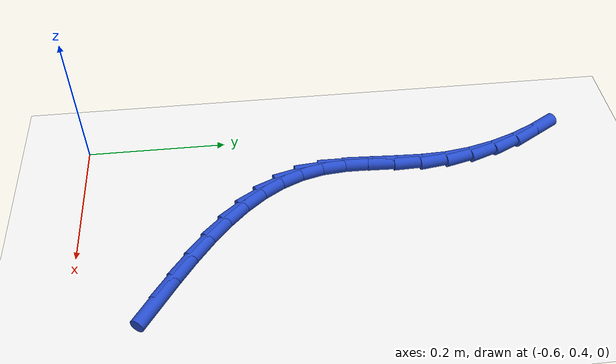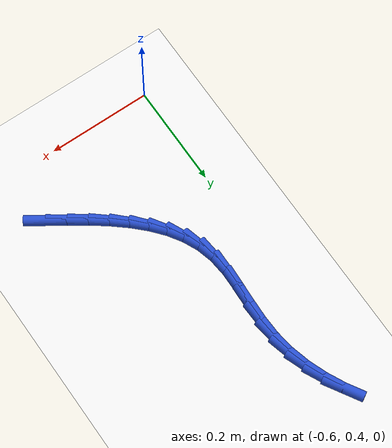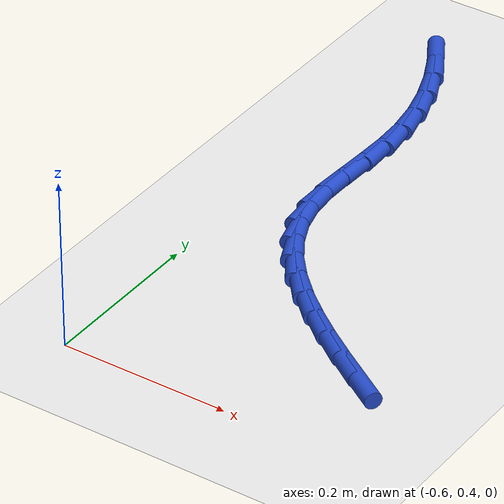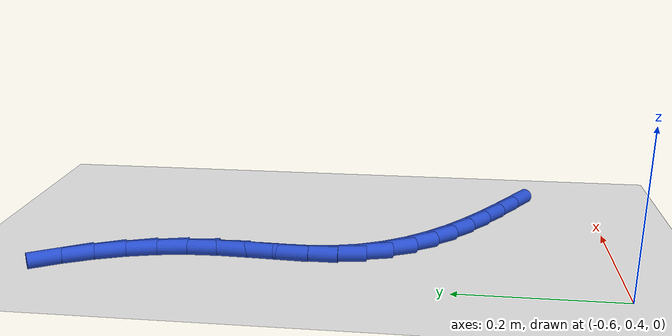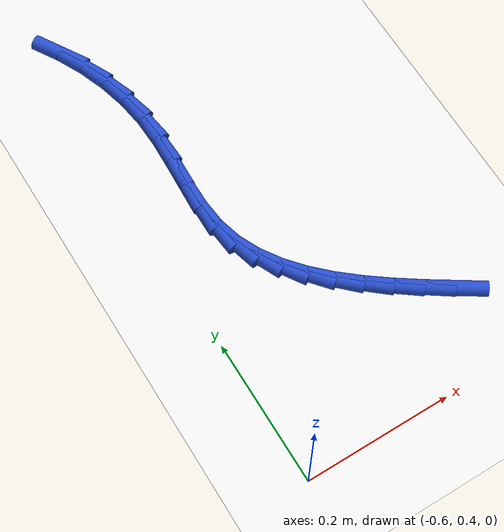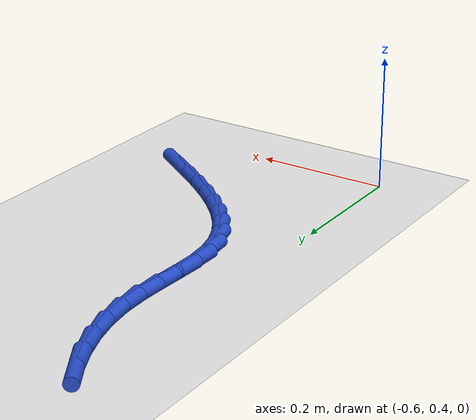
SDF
<sdf version="1.6">
 <world name="default">
  <model name="ground_plane">
   <static>1</static>
   <link name="link">
    <collision name="collision">
     <geometry><plane><normal>0 0 1</normal><size>100 100</size></plane></geometry>
     <surface><friction><ode><mu>100</mu><mu2>50</mu2></ode></friction></surface>
    </collision>
    <visual name="visual">
     <cast_shadows>0</cast_shadows>
     <geometry><plane><normal>0 0 1</normal><size>100 100</size></plane></geometry>
     <material>
      <script><uri>file://media/materials/scripts/gazebo.material</uri><name>Gazebo/WhiteGlow</name></script>
     </material>
    </visual>
   </link>
  </model>
  <model name="line">
   <link name="link_17">
    <pose>-0.31103651781498654 0.5091369760425618 0.01 0 1.57 -0.577998081288668</pose>
    <collision name="collision">
     <geometry><cylinder><radius>0.01</radius><length>0.08</length></cylinder></geometry>
    </collision>
    <visual name="visual">
     <material>
      <script><name>Gazebo/Blue</name><uri>file://media/materials/scripts/gazebo.material</uri></script>
     </material>
     <geometry><cylinder><radius>0.01</radius><length>0.08</length></cylinder></geometry>
    </visual>
   </link>
   <link name="link_18">
    <pose>-0.3445960325773251 0.5310282153043822 0.01 0 1.57 -0.602894879391475</pose>
    <collision name="collision">
     <geometry><cylinder><radius>0.01</radius><length>0.08</length></cylinder></geometry>
    </collision>
    <visual name="visual">
     <material>
      <script><name>Gazebo/Blue</name><uri>file://media/materials/scripts/gazebo.material</uri></script>
     </material>
     <geometry><cylinder><radius>0.01</radius><length>0.08</length></cylinder></geometry>
    </visual>
   </link>
   <link name="link_19">
    <pose>-0.37693569843785457 0.553290681576757 0.01 0 1.57 -0.6424427343244258</pose>
    <collision name="collision">
     <geometry><cylinder><radius>0.01</radius><length>0.08</length></cylinder></geometry>
    </collision>
    <visual name="visual">
     <material>
      <script><name>Gazebo/Blue</name><uri>file://media/materials/scripts/gazebo.material</uri></script>
     </material>
     <geometry><cylinder><radius>0.01</radius><length>0.08</length></cylinder></geometry>
    </visual>
   </link>
   <link name="link_20">
    <pose>-0.4075097143607482 0.5761706730430886 0.01 0 1.57 -0.6987274551730457</pose>
    <collision name="collision">
     <geometry><cylinder><radius>0.01</radius><length>0.08</length></cylinder></geometry>
    </collision>
    <visual name="visual">
     <material>
      <script><name>Gazebo/Blue</name><uri>file://media/materials/scripts/gazebo.material</uri></script>
     </material>
     <geometry><cylinder><radius>0.01</radius><length>0.08</length></cylinder></geometry>
    </visual>
   </link>
   <link name="link_21">
    <pose>-0.4357722793101789 0.5999144878867787 0.01 0 1.57 -0.7744279554427321</pose>
    <collision name="collision">
     <geometry><cylinder><radius>0.01</radius><length>0.08</length></cylinder></geometry>
    </collision>
    <visual name="visual">
     <material>
      <script><name>Gazebo/Blue</name><uri>file://media/materials/scripts/gazebo.material</uri></script>
     </material>
     <geometry><cylinder><radius>0.01</radius><length>0.08</length></cylinder></geometry>
    </visual>
   </link>
   <link name="link_22">
    <pose>-0.46117759225032023 0.6247684242912297 0.01 0 1.57 -0.872459584215574</pose>
    <collision name="collision">
     <geometry><cylinder><radius>0.01</radius><length>0.08</length></cylinder></geometry>
    </collision>
    <visual name="visual">
     <material>
      <script><name>Gazebo/Blue</name><uri>file://media/materials/scripts/gazebo.material</uri></script>
     </material>
     <geometry><cylinder><radius>0.01</radius><length>0.08</length></cylinder></geometry>
    </visual>
   </link>
   <link name="link_23">
    <pose>-0.48317985214534515 0.6509787804398434 0.01 0 1.57 -0.9950555875091925</pose>
    <collision name="collision">
     <geometry><cylinder><radius>0.01</radius><length>0.08</length></cylinder></geometry>
    </collision>
    <visual name="visual">
     <material>
      <script><name>Gazebo/Blue</name><uri>file://media/materials/scripts/gazebo.material</uri></script>
     </material>
     <geometry><cylinder><radius>0.01</radius><length>0.08</length></cylinder></geometry>
    </visual>
   </link>
   <link name="link_24">
    <pose>-0.5012332579594266 0.6787918545160216 0.01 0 1.57 -1.1420479130836112</pose>
    <collision name="collision">
     <geometry><cylinder><radius>0.01</radius><length>0.08</length></cylinder></geometry>
    </collision>
    <visual name="visual">
     <material>
      <script><name>Gazebo/Blue</name><uri>file://media/materials/scripts/gazebo.material</uri></script>
     </material>
     <geometry><cylinder><radius>0.01</radius><length>0.08</length></cylinder></geometry>
    </visual>
   </link>
   <link name="link_25">
    <pose>-0.5147920086567381 0.7084539447031666 0.01 0 1.57 -1.3087347858568719</pose>
    <collision name="collision">
     <geometry><cylinder><radius>0.01</radius><length>0.08</length></cylinder></geometry>
    </collision>
    <visual name="visual">
     <material>
      <script><name>Gazebo/Blue</name><uri>file://media/materials/scripts/gazebo.material</uri></script>
     </material>
     <geometry><cylinder><radius>0.01</radius><length>0.08</length></cylinder></geometry>
    </visual>
   </link>
   <link name="link_26">
    <pose>-0.5233103032014527 0.7402113491846801 0.01 0 1.57 -1.4740119377629726</pose>
    <collision name="collision">
     <geometry><cylinder><radius>0.01</radius><length>0.08</length></cylinder></geometry>
    </collision>
    <visual name="visual">
     <material>
      <script><name>Gazebo/Blue</name><uri>file://media/materials/scripts/gazebo.material</uri></script>
     </material>
     <geometry><cylinder><radius>0.01</radius><length>0.08</length></cylinder></geometry>
    </visual>
   </link>
   <link name="link_27">
    <pose>-0.5266100318350425 0.7741984325792118 0.01 0 1.57 1.5613481809451468</pose>
    <collision name="collision">
     <geometry><cylinder><radius>0.01</radius><length>0.08</length></cylinder></geometry>
    </collision>
    <visual name="visual">
     <material>
      <script><name>Gazebo/Blue</name><uri>file://media/materials/scripts/gazebo.material</uri></script>
     </material>
     <geometry><cylinder><radius>0.01</radius><length>0.08</length></cylinder></geometry>
    </visual>
   </link>
   <link name="link_28">
    <pose>-0.5262716289939188 0.8100142187653184 0.01 0 1.57 1.5203862530306893</pose>
    <collision name="collision">
     <geometry><cylinder><radius>0.01</radius><length>0.08</length></cylinder></geometry>
    </collision>
    <visual name="visual">
     <material>
      <script><name>Gazebo/Blue</name><uri>file://media/materials/scripts/gazebo.material</uri></script>
     </material>
     <geometry><cylinder><radius>0.01</radius><length>0.08</length></cylinder></geometry>
    </visual>
   </link>
   <link name="link_29">
    <pose>-0.5244006542240386 0.8470978716273672 0.01 0 1.57 1.5364655016082054</pose>
    <collision name="collision">
     <geometry><cylinder><radius>0.01</radius><length>0.08</length></cylinder></geometry>
    </collision>
    <visual name="visual">
     <material>
      <script><name>Gazebo/Blue</name><uri>file://media/materials/scripts/gazebo.material</uri></script>
     </material>
     <geometry><cylinder><radius>0.01</radius><length>0.08</length></cylinder></geometry>
    </visual>
   </link>
   <link name="link_30">
    <pose>-0.5231027599061153 0.8848885267887207 0.01 0 1.57 -1.5344339505536866</pose>
    <collision name="collision">
     <geometry><cylinder><radius>0.01</radius><length>0.08</length></cylinder></geometry>
    </collision>
    <visual name="visual">
     <material>
      <script><name>Gazebo/Blue</name><uri>file://media/materials/scripts/gazebo.material</uri></script>
     </material>
     <geometry><cylinder><radius>0.01</radius><length>0.08</length></cylinder></geometry>
    </visual>
   </link>
   <link name="link_31">
    <pose>-0.5244828437341927 0.9228254180977429 0.01 0 1.57 -1.4231509830541502</pose>
    <collision name="collision">
     <geometry><cylinder><radius>0.01</radius><length>0.08</length></cylinder></geometry>
    </collision>
    <visual name="visual">
     <material>
      <script><name>Gazebo/Blue</name><uri>file://media/materials/scripts/gazebo.material</uri></script>
     </material>
     <geometry><cylinder><radius>0.01</radius><length>0.08</length></cylinder></geometry>
    </visual>
   </link>
   <link name="link_32">
    <pose>-0.5300745142541082 0.9604221346020347 0.01 0 1.57 -1.3130007746534529</pose>
    <collision name="collision">
     <geometry><cylinder><radius>0.01</radius><length>0.08</length></cylinder></geometry>
    </collision>
    <visual name="visual">
     <material>
      <script><name>Gazebo/Blue</name><uri>file://media/materials/scripts/gazebo.material</uri></script>
     </material>
     <geometry><cylinder><radius>0.01</radius><length>0.08</length></cylinder></geometry>
    </visual>
   </link>
   <link name="link_33">
    <pose>-0.5398238947844056 0.9973988818773287 0.01 0 1.57 -1.2111162126619603</pose>
    <collision name="collision">
     <geometry><cylinder><radius>0.01</radius><length>0.08</length></cylinder></geometry>
    </collision>
    <visual name="visual">
     <material>
      <script><name>Gazebo/Blue</name><uri>file://media/materials/scripts/gazebo.material</uri></script>
     </material>
     <geometry><cylinder><radius>0.01</radius><length>0.08</length></cylinder></geometry>
    </visual>
   </link>
   <link name="link_34">
    <pose>-0.5534035871602542 1.0335114652380466 0.01 0 1.57 -1.116782160486267</pose>
    <collision name="collision">
     <geometry><cylinder><radius>0.01</radius><length>0.08</length></cylinder></geometry>
    </collision>
    <visual name="visual">
     <material>
      <script><name>Gazebo/Blue</name><uri>file://media/materials/scripts/gazebo.material</uri></script>
     </material>
     <geometry><cylinder><radius>0.01</radius><length>0.08</length></cylinder></geometry>
    </visual>
   </link>
   <link name="link_35">
    <pose>-0.570486193216822 1.0685156899986097 0.01 0 1.57 -1.0289115634188921</pose>
    <collision name="collision">
     <geometry><cylinder><radius>0.01</radius><length>0.08</length></cylinder></geometry>
    </collision>
    <visual name="visual">
     <material>
      <script><name>Gazebo/Blue</name><uri>file://media/materials/scripts/gazebo.material</uri></script>
     </material>
     <geometry><cylinder><radius>0.01</radius><length>0.08</length></cylinder></geometry>
    </visual>
   </link>
  </model>
 </world>
</sdf>
